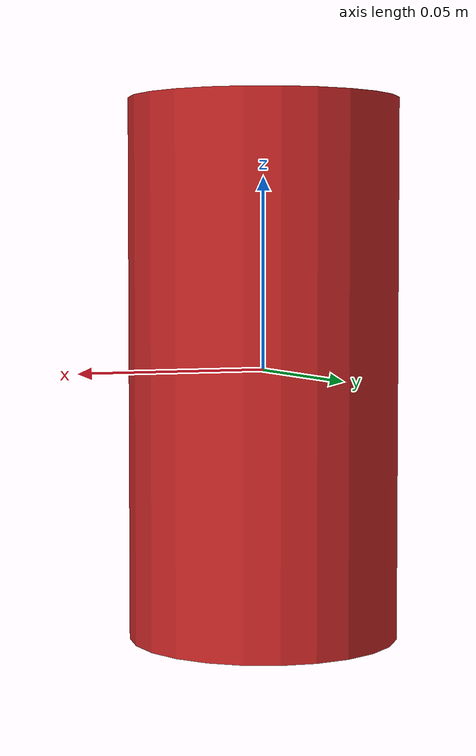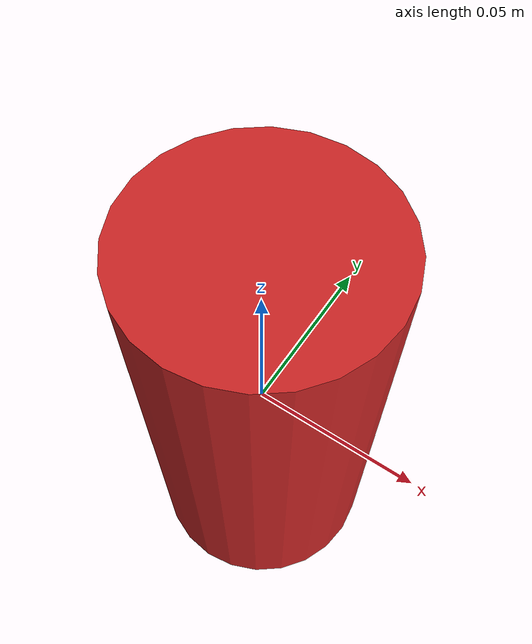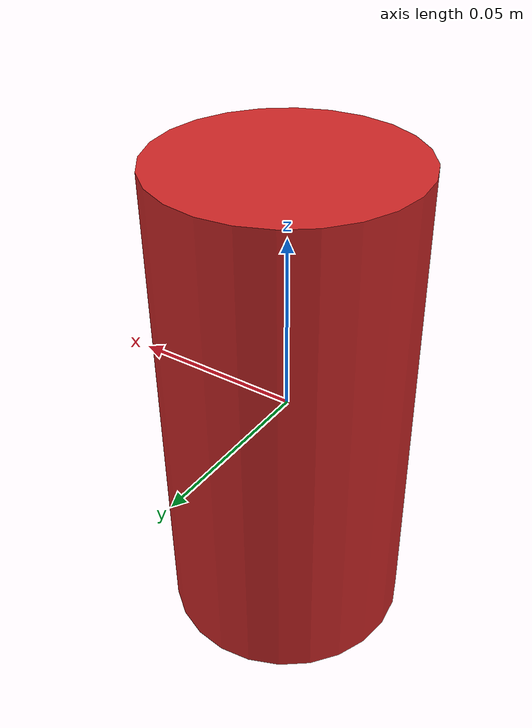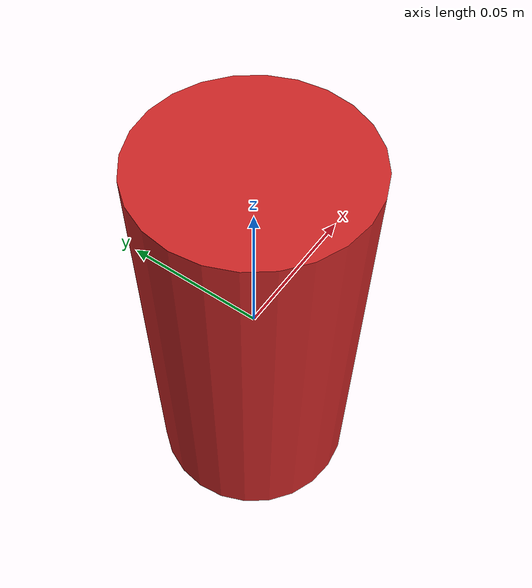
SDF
<?xml version="1.0"?>
<sdf version="1.7">
  <model name="pusher">
    <link name="pusher_base_link">
      <inertial>
        <mass>0.1</mass>
        <inertia>
          <ixx>1e-2</ixx>
          <ixy>0</ixy>
          <ixz>0</ixz>
          <iyy>1e-2</iyy>
          <iyz>0</iyz>
          <izz>1e-2</izz>
        </inertia>
      </inertial>
      <pose>0 0 0 0 0 0</pose>

      <visual name="visual">
        <geometry>
          <cylinder>
            <radius>0.035</radius>
            <length>0.14</length>
          </cylinder>
        </geometry>
        <material>
          <diffuse>0.80078125 0.1484375 0.1484375 1.0</diffuse>
        </material>
      </visual>

      <collision name="collision">
        <geometry>
          <cylinder>
            <radius>0.035</radius>
            <length>0.14</length>
          </cylinder>
        </geometry>
        <drake:proximity_properties>
          <drake:compliant_hydroelastic/>
          <drake:hydroelastic_modulus>1e5</drake:hydroelastic_modulus>
          <drake:mesh_resolution_hint>0.005</drake:mesh_resolution_hint>
          <drake:mu_dynamic>0.1</drake:mu_dynamic>
          <drake:mu_static>0.1</drake:mu_static>
        </drake:proximity_properties>
      </collision>
    </link>
  </model>
</sdf>
